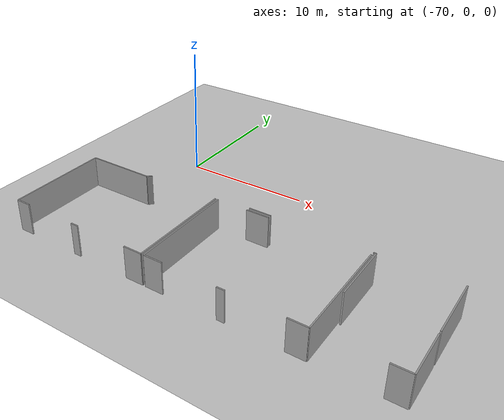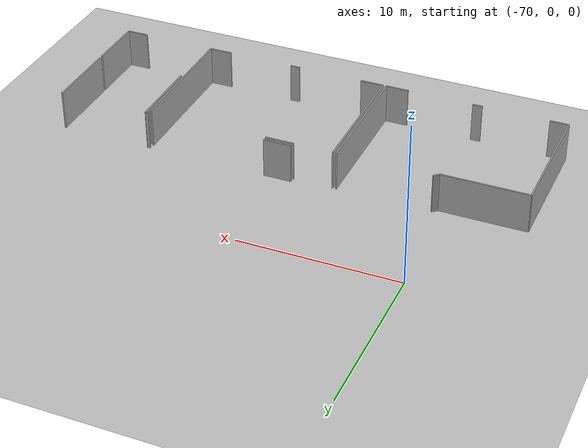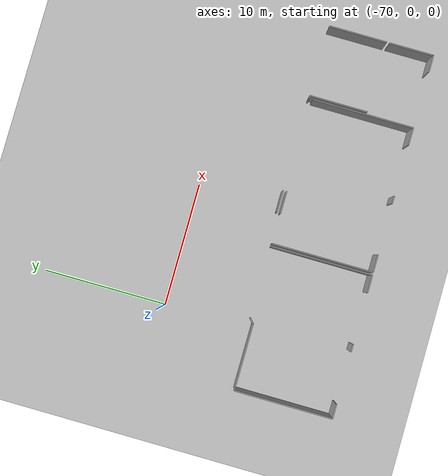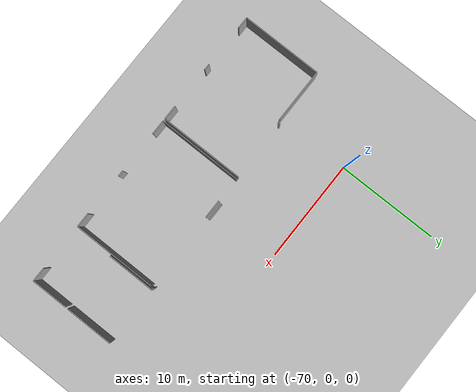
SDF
<sdf version="1.6">
 <world name="default">
  <model name="ground_plane">
   <static>1</static>
   <link name="link">
    <collision name="collision">
     <geometry><plane><normal>0 0 1</normal><size>100 100</size></plane></geometry>
     <surface><friction><ode><mu>100</mu><mu2>50</mu2></ode></friction></surface>
    </collision>
    <visual name="visual">
     <cast_shadows>0</cast_shadows>
     <geometry><plane><normal>0 0 1</normal><size>100 100</size></plane></geometry>
     <material>
      <script><uri>file://media/materials/scripts/gazebo.material</uri><name>Gazebo/Grey</name></script>
     </material>
    </visual>
   </link>
  </model>
  <model name="0510032218_A-40">
   <static>1</static>
   <link name="Wall_254">
    <collision name="Wall_254_Collision">
     <geometry><box><size>0.188747501031 0.1 2.5</size></box></geometry>
     <pose>0.0943737505157 0 1.25 0 0 0</pose>
    </collision>
    <visual name="Wall_254_Visual">
     <pose>0.0943737505157 0 1.25 0 0 0</pose>
     <geometry><box><size>0.188747501031 0.1 2.5</size></box></geometry>
     <material>
      <script><uri>file://media/materials/scripts/gazebo.material</uri><name>Gazebo/Grey</name></script>
      <ambient>1 1 1 1</ambient>
     </material>
    </visual>
    <pose>23.7577761559 -56.2741725637 0 0 0 3.14159265359</pose>
   </link>
   <link name="Wall_255">
    <collision name="Wall_255_Collision">
     <geometry><box><size>1.75267349983 0.1 2.5</size></box></geometry>
     <pose>0.876336749913 0 1.25 0 0 0</pose>
    </collision>
    <visual name="Wall_255_Visual">
     <pose>0.876336749913 0 1.25 0 0 0</pose>
     <geometry><box><size>1.75267349983 0.1 2.5</size></box></geometry>
     <material>
      <script><uri>file://media/materials/scripts/gazebo.material</uri><name>Gazebo/Grey</name></script>
      <ambient>1 1 1 1</ambient>
     </material>
    </visual>
    <pose>16.0083394155 -56.2741725637 0 0 0 3.14159265359</pose>
   </link>
   <link name="Wall_286">
    <collision name="Wall_286_Collision">
     <geometry><box><size>4.71221400692 0.1 2.5</size></box></geometry>
     <pose>2.35610700346 0 1.25 0 0 0</pose>
    </collision>
    <visual name="Wall_286_Visual">
     <pose>2.35610700346 0 1.25 0 0 0</pose>
     <geometry><box><size>4.71221400692 0.1 2.5</size></box></geometry>
     <material>
      <script><uri>file://media/materials/scripts/gazebo.material</uri><name>Gazebo/Grey</name></script>
      <ambient>1 1 1 1</ambient>
     </material>
    </visual>
    <pose>29.5021990924 -56.248913147 0 0 0 -1.57079632679</pose>
   </link>
   <link name="Wall_287">
    <collision name="Wall_287_Collision">
     <geometry><box><size>4.68696614722 0.1 2.5</size></box></geometry>
     <pose>2.34348307361 0 1.25 0 0 0</pose>
    </collision>
    <visual name="Wall_287_Visual">
     <pose>2.34348307361 0 1.25 0 0 0</pose>
     <geometry><box><size>4.68696614722 0.1 2.5</size></box></geometry>
     <material>
      <script><uri>file://media/materials/scripts/gazebo.material</uri><name>Gazebo/Grey</name></script>
      <ambient>1 1 1 1</ambient>
     </material>
    </visual>
    <pose>23.747367753 -60.9611271539 0 0 0 1.56857561277</pose>
   </link>
   <link name="Wall_335">
    <collision name="Wall_335_Collision">
     <geometry><box><size>1.36438929965 0.1 2.5</size></box></geometry>
     <pose>0.682194649827 0 1.25 0 0 0</pose>
    </collision>
    <visual name="Wall_335_Visual">
     <pose>0.682194649827 0 1.25 0 0 0</pose>
     <geometry><box><size>1.36438929965 0.1 2.5</size></box></geometry>
     <material>
      <script><uri>file://media/materials/scripts/gazebo.material</uri><name>Gazebo/Grey</name></script>
      <ambient>1 1 1 1</ambient>
     </material>
    </visual>
    <pose>29.4983911402 -64.7580363659 0 0 0 3.14159265359</pose>
   </link>
   <link name="Wall_341">
    <collision name="Wall_341_Collision">
     <geometry><box><size>3.57858780589 0.1 2.5</size></box></geometry>
     <pose>1.78929390295 0 1.25 0 0 0</pose>
    </collision>
    <visual name="Wall_341_Visual">
     <pose>1.78929390295 0 1.25 0 0 0</pose>
     <geometry><box><size>3.57858780589 0.1 2.5</size></box></geometry>
     <material>
      <script><uri>file://media/materials/scripts/gazebo.material</uri><name>Gazebo/Grey</name></script>
      <ambient>1 1 1 1</ambient>
     </material>
    </visual>
    <pose>29.4954717101 -61.1794497509 0 0 0 -1.56998052163</pose>
   </link>
   <link name="Wall_342">
    <collision name="Wall_342_Collision">
     <geometry><box><size>1.42417415035 0.1 2.5</size></box></geometry>
     <pose>0.712087075175 0 1.25 0 0 0</pose>
    </collision>
    <visual name="Wall_342_Visual">
     <pose>0.712087075175 0 1.25 0 0 0</pose>
     <geometry><box><size>1.42417415035 0.1 2.5</size></box></geometry>
     <material>
      <script><uri>file://media/materials/scripts/gazebo.material</uri><name>Gazebo/Grey</name></script>
      <ambient>1 1 1 1</ambient>
     </material>
    </visual>
    <pose>23.5312029956 -64.753086028 0 0 0 3.14159265359</pose>
   </link>
   <link name="Wall_343">
    <collision name="Wall_343_Collision">
     <geometry><box><size>0.606226001967 0.1 2.5</size></box></geometry>
     <pose>0.303113000984 0 1.25 0 0 0</pose>
    </collision>
    <visual name="Wall_343_Visual">
     <pose>0.303113000984 0 1.25 0 0 0</pose>
     <geometry><box><size>0.606226001967 0.1 2.5</size></box></geometry>
     <material>
      <script><uri>file://media/materials/scripts/gazebo.material</uri><name>Gazebo/Grey</name></script>
      <ambient>1 1 1 1</ambient>
     </material>
    </visual>
    <pose>17.950395075 -64.753086028 0 0 0 3.14159265359</pose>
   </link>
   <link name="Wall_344">
    <collision name="Wall_344_Collision">
     <geometry><box><size>1.44676800051 0.1 2.5</size></box></geometry>
     <pose>0.723384000254 0 1.25 0 0 0</pose>
    </collision>
    <visual name="Wall_344_Visual">
     <pose>0.723384000254 0 1.25 0 0 0</pose>
     <geometry><box><size>1.44676800051 0.1 2.5</size></box></geometry>
     <material>
      <script><uri>file://media/materials/scripts/gazebo.material</uri><name>Gazebo/Grey</name></script>
      <ambient>1 1 1 1</ambient>
     </material>
    </visual>
    <pose>13.198324501 -64.753086028 0 0 0 3.14159265359</pose>
   </link>
   <link name="Wall_345">
    <collision name="Wall_345_Collision">
     <geometry><box><size>8.19293624853 0.1 2.5</size></box></geometry>
     <pose>4.09646812427 0 1.25 0 0 0</pose>
    </collision>
    <visual name="Wall_345_Visual">
     <pose>4.09646812427 0 1.25 0 0 0</pose>
     <geometry><box><size>8.19293624853 0.1 2.5</size></box></geometry>
     <material>
      <script><uri>file://media/materials/scripts/gazebo.material</uri><name>Gazebo/Grey</name></script>
      <ambient>1 1 1 1</ambient>
     </material>
    </visual>
    <pose>11.7515565005 -64.753086028 0 0 0 1.57079632679</pose>
   </link>
   <link name="Wall_346">
    <collision name="Wall_346_Collision">
     <geometry><box><size>1.80268460635 0.1 2.5</size></box></geometry>
     <pose>0.901342303176 0 1.25 0 0 0</pose>
    </collision>
    <visual name="Wall_346_Visual">
     <pose>0.901342303176 0 1.25 0 0 0</pose>
     <geometry><box><size>1.80268460635 0.1 2.5</size></box></geometry>
     <material>
      <script><uri>file://media/materials/scripts/gazebo.material</uri><name>Gazebo/Grey</name></script>
      <ambient>1 1 1 1</ambient>
     </material>
    </visual>
    <pose>14.207685717 -56.5601497795 0 0 0 0.0</pose>
   </link>
   <link name="Wall_347">
    <collision name="Wall_347_Collision">
     <geometry><box><size>8.19294750593 0.1 2.5</size></box></geometry>
     <pose>4.09647375297 0 1.25 0 0 0</pose>
    </collision>
    <visual name="Wall_347_Visual">
     <pose>4.09647375297 0 1.25 0 0 0</pose>
     <geometry><box><size>8.19294750593 0.1 2.5</size></box></geometry>
     <material>
      <script><uri>file://media/materials/scripts/gazebo.material</uri><name>Gazebo/Grey</name></script>
      <ambient>1 1 1 1</ambient>
     </material>
    </visual>
    <pose>23.544784692 -56.5601497795 0 0 0 -1.57245405775</pose>
   </link>
   <link name="Wall_348">
    <collision name="Wall_348_Collision">
     <geometry><box><size>1.43255164535 0.1 2.5</size></box></geometry>
     <pose>0.716275822676 0 1.25 0 0 0</pose>
    </collision>
    <visual name="Wall_348_Visual">
     <pose>0.716275822676 0 1.25 0 0 0</pose>
     <geometry><box><size>1.43255164535 0.1 2.5</size></box></geometry>
     <material>
      <script><uri>file://media/materials/scripts/gazebo.material</uri><name>Gazebo/Grey</name></script>
      <ambient>1 1 1 1</ambient>
     </material>
    </visual>
    <pose>11.5298067464 -64.7556246628 0 0 0 3.14159265359</pose>
   </link>
   <link name="Wall_349">
    <collision name="Wall_349_Collision">
     <geometry><box><size>0.612191793863 0.1 2.5</size></box></geometry>
     <pose>0.306095896931 0 1.25 0 0 0</pose>
    </collision>
    <visual name="Wall_349_Visual">
     <pose>0.306095896931 0 1.25 0 0 0</pose>
     <geometry><box><size>0.612191793863 0.1 2.5</size></box></geometry>
     <material>
      <script><uri>file://media/materials/scripts/gazebo.material</uri><name>Gazebo/Grey</name></script>
      <ambient>1 1 1 1</ambient>
     </material>
    </visual>
    <pose>5.95737632088 -64.7556246628 0 0 0 3.14159265359</pose>
   </link>
   <link name="Wall_350">
    <collision name="Wall_350_Collision">
     <geometry><box><size>1.15486307238 0.1 2.5</size></box></geometry>
     <pose>0.577431536191 0 1.25 0 0 0</pose>
    </collision>
    <visual name="Wall_350_Visual">
     <pose>0.577431536191 0 1.25 0 0 0</pose>
     <geometry><box><size>1.15486307238 0.1 2.5</size></box></geometry>
     <material>
      <script><uri>file://media/materials/scripts/gazebo.material</uri><name>Gazebo/Grey</name></script>
      <ambient>1 1 1 1</ambient>
     </material>
    </visual>
    <pose>1.15486307238 -64.7556246628 0 0 0 3.14159265359</pose>
   </link>
   <link name="Wall_351">
    <collision name="Wall_351_Collision">
     <geometry><box><size>7.90112017263 0.1 2.5</size></box></geometry>
     <pose>3.95056008631 0 1.25 0 0 0</pose>
    </collision>
    <visual name="Wall_351_Visual">
     <pose>3.95056008631 0 1.25 0 0 0</pose>
     <geometry><box><size>7.90112017263 0.1 2.5</size></box></geometry>
     <material>
      <script><uri>file://media/materials/scripts/gazebo.material</uri><name>Gazebo/Grey</name></script>
      <ambient>1 1 1 1</ambient>
     </material>
    </visual>
    <pose>0.0 -64.7556246628 0 0 0 1.57079632679</pose>
   </link>
   <link name="Wall_352">
    <collision name="Wall_352_Collision">
     <geometry><box><size>5.34873861581 0.1 2.5</size></box></geometry>
     <pose>2.6743693079 0 1.25 0 0 0</pose>
    </collision>
    <visual name="Wall_352_Visual">
     <pose>2.6743693079 0 1.25 0 0 0</pose>
     <geometry><box><size>5.34873861581 0.1 2.5</size></box></geometry>
     <material>
      <script><uri>file://media/materials/scripts/gazebo.material</uri><name>Gazebo/Grey</name></script>
      <ambient>1 1 1 1</ambient>
     </material>
    </visual>
    <pose>0.0 -56.8545044902 0 0 0 0.0</pose>
   </link>
   <link name="Wall_353">
    <collision name="Wall_353_Collision">
     <geometry><box><size>0.426850992354 0.1 2.5</size></box></geometry>
     <pose>0.213425496177 0 1.25 0 0 0</pose>
    </collision>
    <visual name="Wall_353_Visual">
     <pose>0.213425496177 0 1.25 0 0 0</pose>
     <geometry><box><size>0.426850992354 0.1 2.5</size></box></geometry>
     <material>
      <script><uri>file://media/materials/scripts/gazebo.material</uri><name>Gazebo/Grey</name></script>
      <ambient>1 1 1 1</ambient>
     </material>
    </visual>
    <pose>5.34873861581 -56.8545044902 0 0 0 0.740595497827</pose>
   </link>
   <link name="Wall_354">
    <collision name="Wall_354_Collision">
     <geometry><box><size>8.18912829626 0.1 2.5</size></box></geometry>
     <pose>4.09456414813 0 1.25 0 0 0</pose>
    </collision>
    <visual name="Wall_354_Visual">
     <pose>4.09456414813 0 1.25 0 0 0</pose>
     <geometry><box><size>8.18912829626 0.1 2.5</size></box></geometry>
     <material>
      <script><uri>file://media/materials/scripts/gazebo.material</uri><name>Gazebo/Grey</name></script>
      <ambient>1 1 1 1</ambient>
     </material>
    </visual>
    <pose>11.5298067464 -56.5664963666 0 0 0 -1.57079632679</pose>
   </link>
   <pose>-74.8 49.7517929109 0 0 0 0</pose>
  </model>
 </world>
</sdf>
